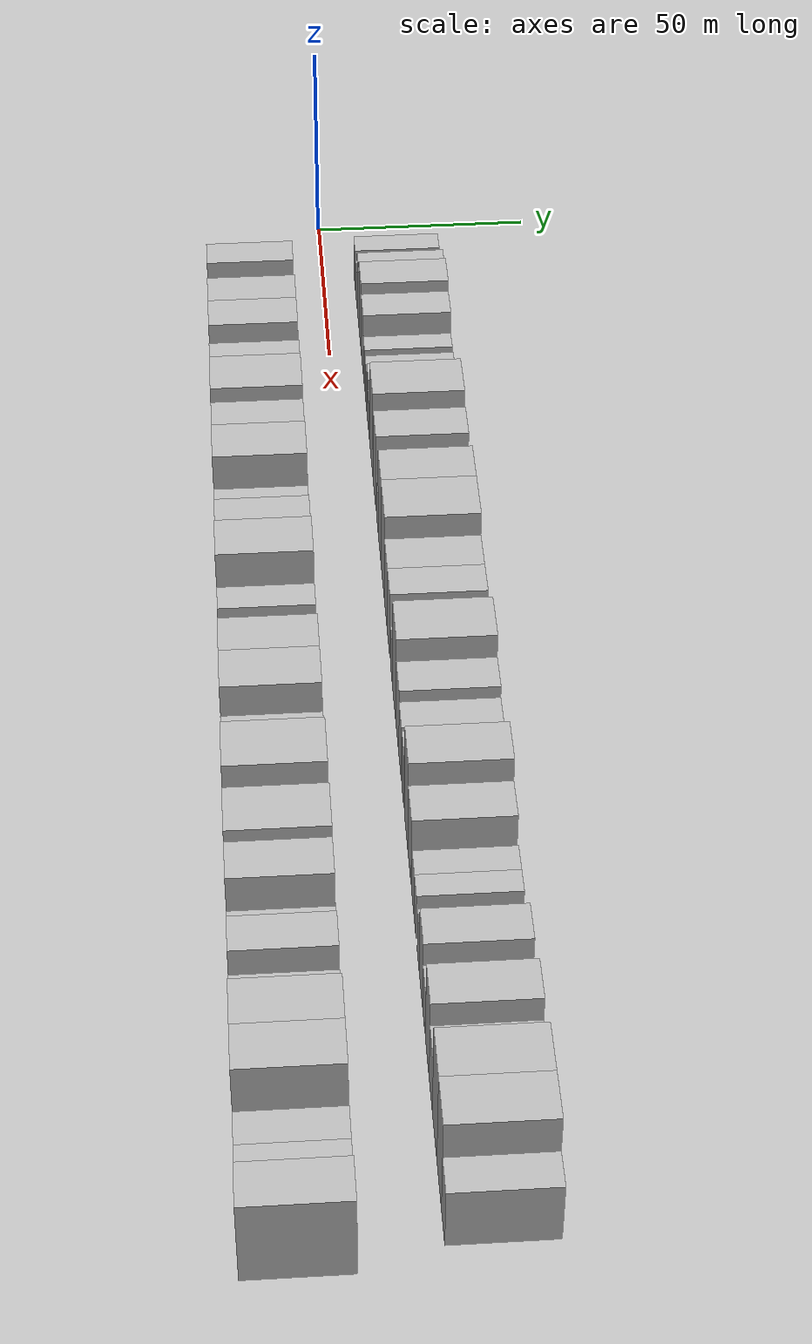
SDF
<sdf version="1.6">
 <world name="default">
  <scene>
   <sky><clouds><speed>12</speed></clouds></sky>
   <ambient>0.4 0.4 0.4 1</ambient>
   <background>0.7 0.7 0.7 1</background>
   <shadows>1</shadows>
  </scene>
  <gravity>0 0 -9.8066</gravity>
  <magnetic_field>6e-06 2.3e-05 -4.2e-05</magnetic_field>
  <physics default="0" name="default_physics" type="ode">
   <ode>
    <solver>
     <type>quick</type>
     <iters>10</iters>
     <sor>1.0</sor>
     <use_dynamic_moi_rescaling>0</use_dynamic_moi_rescaling>
    </solver>
    <constraints>
     <cfm>0</cfm>
     <erp>0.2</erp>
     <contact_max_correcting_vel>100</contact_max_correcting_vel>
     <contact_surface_layer>0.001</contact_surface_layer>
    </constraints>
   </ode>
   <max_step_size>0.004</max_step_size>
   <real_time_factor>1</real_time_factor>
   <real_time_update_rate>250</real_time_update_rate>
  </physics>
  <light name="sun" type="directional">
   <pose>0 0 10 0 0 0</pose>
   <diffuse>0.8 0.8 0.8 1</diffuse>
   <specular>0.2 0.2 0.2 1</specular>
   <attenuation>
    <range>1000</range>
    <constant>0.9</constant>
    <linear>0.01</linear>
    <quadratic>0.001</quadratic>
   </attenuation>
   <direction>-0.5 0.1 -0.9</direction>
  </light>
  <model name="building_1">
   <static>1</static>
   <pose>22.8825 17.5000 0 0.000000 0.000000 1.570796</pose>
   <link name="link">
    <pose>0 0 6.00 0 0 0</pose>
    <collision name="collision"><geometry><box><size>20.0000 5.7649 12.0000</size></box></geometry></collision>
    <visual name="visual">
     <cast_shadows>0</cast_shadows>
     <geometry><box><size>20.0000 5.7649 12.0000</size></box></geometry>
     <material>
      <script>
       <uri>model://HANNAS_wall/materials/scripts</uri>
       <uri>model://HANNAS_wall/materials/textures</uri>
       <name>vrc/HANNAS_wall</name>
      </script>
     </material>
    </visual>
   </link>
  </model>
  <model name="building_2">
   <static>1</static>
   <pose>31.7566 17.5000 0 0.000000 0.000000 1.570796</pose>
   <link name="link">
    <pose>0 0 6.00 0 0 0</pose>
    <collision name="collision"><geometry><box><size>20.0000 5.9834 12.0000</size></box></geometry></collision>
    <visual name="visual">
     <cast_shadows>0</cast_shadows>
     <geometry><box><size>20.0000 5.9834 12.0000</size></box></geometry>
     <material>
      <script>
       <uri>model://HANNAS_wall/materials/scripts</uri>
       <uri>model://HANNAS_wall/materials/textures</uri>
       <name>vrc/HANNAS_wall</name>
      </script>
     </material>
    </visual>
   </link>
  </model>
  <model name="building_3">
   <static>1</static>
   <pose>38.5076 17.5000 0 0.000000 0.000000 1.570796</pose>
   <link name="link">
    <pose>0 0 9.00 0 0 0</pose>
    <collision name="collision"><geometry><box><size>20.0000 7.5184 18.0000</size></box></geometry></collision>
    <visual name="visual">
     <cast_shadows>0</cast_shadows>
     <geometry><box><size>20.0000 7.5184 18.0000</size></box></geometry>
     <material>
      <script>
       <uri>model://HANNAS_wall/materials/scripts</uri>
       <uri>model://HANNAS_wall/materials/textures</uri>
       <name>vrc/HANNAS_wall</name>
      </script>
     </material>
    </visual>
   </link>
  </model>
  <model name="building_4">
   <static>1</static>
   <pose>46.5126 17.5000 0 0.000000 0.000000 1.570796</pose>
   <link name="link">
    <pose>0 0 10.50 0 0 0</pose>
    <collision name="collision"><geometry><box><size>20.0000 8.4917 21.0000</size></box></geometry></collision>
    <visual name="visual">
     <cast_shadows>0</cast_shadows>
     <geometry><box><size>20.0000 8.4917 21.0000</size></box></geometry>
     <material>
      <script>
       <uri>model://HANNAS_wall/materials/scripts</uri>
       <uri>model://HANNAS_wall/materials/textures</uri>
       <name>vrc/HANNAS_wall</name>
      </script>
     </material>
    </visual>
   </link>
  </model>
  <model name="building_5">
   <static>1</static>
   <pose>54.7586 17.5000 0 0.000000 0.000000 1.570796</pose>
   <link name="link">
    <pose>0 0 9.00 0 0 0</pose>
    <collision name="collision"><geometry><box><size>20.0000 8.0003 18.0000</size></box></geometry></collision>
    <visual name="visual">
     <cast_shadows>0</cast_shadows>
     <geometry><box><size>20.0000 8.0003 18.0000</size></box></geometry>
     <material>
      <script>
       <uri>model://HANNAS_wall/materials/scripts</uri>
       <uri>model://HANNAS_wall/materials/textures</uri>
       <name>vrc/HANNAS_wall</name>
      </script>
     </material>
    </visual>
   </link>
  </model>
  <model name="building_6">
   <static>1</static>
   <pose>61.2780 17.5000 0 0.000000 0.000000 1.570796</pose>
   <link name="link">
    <pose>0 0 6.00 0 0 0</pose>
    <collision name="collision"><geometry><box><size>20.0000 5.0384 12.0000</size></box></geometry></collision>
    <visual name="visual">
     <cast_shadows>0</cast_shadows>
     <geometry><box><size>20.0000 5.0384 12.0000</size></box></geometry>
     <material>
      <script>
       <uri>model://HANNAS_wall/materials/scripts</uri>
       <uri>model://HANNAS_wall/materials/textures</uri>
       <name>vrc/HANNAS_wall</name>
      </script>
     </material>
    </visual>
   </link>
  </model>
  <model name="building_7">
   <static>1</static>
   <pose>68.5894 17.5000 0 0.000000 0.000000 1.570796</pose>
   <link name="link">
    <pose>0 0 6.00 0 0 0</pose>
    <collision name="collision"><geometry><box><size>20.0000 5.5843 12.0000</size></box></geometry></collision>
    <visual name="visual">
     <cast_shadows>0</cast_shadows>
     <geometry><box><size>20.0000 5.5843 12.0000</size></box></geometry>
     <material>
      <script>
       <uri>model://HANNAS_wall/materials/scripts</uri>
       <uri>model://HANNAS_wall/materials/textures</uri>
       <name>vrc/HANNAS_wall</name>
      </script>
     </material>
    </visual>
   </link>
  </model>
  <model name="building_8">
   <static>1</static>
   <pose>75.3883 17.5000 0 0.000000 0.000000 1.570796</pose>
   <link name="link">
    <pose>0 0 7.50 0 0 0</pose>
    <collision name="collision"><geometry><box><size>20.0000 6.0135 15.0000</size></box></geometry></collision>
    <visual name="visual">
     <cast_shadows>0</cast_shadows>
     <geometry><box><size>20.0000 6.0135 15.0000</size></box></geometry>
     <material>
      <script>
       <uri>model://HANNAS_wall/materials/scripts</uri>
       <uri>model://HANNAS_wall/materials/textures</uri>
       <name>vrc/HANNAS_wall</name>
      </script>
     </material>
    </visual>
   </link>
  </model>
  <model name="building_9">
   <static>1</static>
   <pose>80.8570 17.5000 0 0.000000 0.000000 1.570796</pose>
   <link name="link">
    <pose>0 0 6.00 0 0 0</pose>
    <collision name="collision"><geometry><box><size>20.0000 4.9239 12.0000</size></box></geometry></collision>
    <visual name="visual">
     <cast_shadows>0</cast_shadows>
     <geometry><box><size>20.0000 4.9239 12.0000</size></box></geometry>
     <material>
      <script>
       <uri>model://HANNAS_wall/materials/scripts</uri>
       <uri>model://HANNAS_wall/materials/textures</uri>
       <name>vrc/HANNAS_wall</name>
      </script>
     </material>
    </visual>
   </link>
  </model>
  <model name="building_10">
   <static>1</static>
   <pose>88.8448 17.5000 0 0.000000 0.000000 1.570796</pose>
   <link name="link">
    <pose>0 0 12.00 0 0 0</pose>
    <collision name="collision"><geometry><box><size>20.0000 11.0518 24.0000</size></box></geometry></collision>
    <visual name="visual">
     <cast_shadows>0</cast_shadows>
     <geometry><box><size>20.0000 11.0518 24.0000</size></box></geometry>
     <material>
      <script>
       <uri>model://HANNAS_wall/materials/scripts</uri>
       <uri>model://HANNAS_wall/materials/textures</uri>
       <name>vrc/HANNAS_wall</name>
      </script>
     </material>
    </visual>
   </link>
  </model>
  <model name="building_11">
   <static>1</static>
   <pose>100.7641 17.5000 0 0.000000 0.000000 1.570796</pose>
   <link name="link">
    <pose>0 0 10.50 0 0 0</pose>
    <collision name="collision"><geometry><box><size>20.0000 8.7867 21.0000</size></box></geometry></collision>
    <visual name="visual">
     <cast_shadows>0</cast_shadows>
     <geometry><box><size>20.0000 8.7867 21.0000</size></box></geometry>
     <material>
      <script>
       <uri>model://HANNAS_wall/materials/scripts</uri>
       <uri>model://HANNAS_wall/materials/textures</uri>
       <name>vrc/HANNAS_wall</name>
      </script>
     </material>
    </visual>
   </link>
  </model>
  <model name="building_12">
   <static>1</static>
   <pose>110.0687 17.5000 0 0.000000 0.000000 1.570796</pose>
   <link name="link">
    <pose>0 0 6.00 0 0 0</pose>
    <collision name="collision"><geometry><box><size>20.0000 5.8225 12.0000</size></box></geometry></collision>
    <visual name="visual">
     <cast_shadows>0</cast_shadows>
     <geometry><box><size>20.0000 5.8225 12.0000</size></box></geometry>
     <material>
      <script>
       <uri>model://HANNAS_wall/materials/scripts</uri>
       <uri>model://HANNAS_wall/materials/textures</uri>
       <name>vrc/HANNAS_wall</name>
      </script>
     </material>
    </visual>
   </link>
  </model>
  <model name="building_13">
   <static>1</static>
   <pose>117.8152 17.5000 0 0.000000 0.000000 1.570796</pose>
   <link name="link">
    <pose>0 0 12.00 0 0 0</pose>
    <collision name="collision"><geometry><box><size>20.0000 9.6705 24.0000</size></box></geometry></collision>
    <visual name="visual">
     <cast_shadows>0</cast_shadows>
     <geometry><box><size>20.0000 9.6705 24.0000</size></box></geometry>
     <material>
      <script>
       <uri>model://HANNAS_wall/materials/scripts</uri>
       <uri>model://HANNAS_wall/materials/textures</uri>
       <name>vrc/HANNAS_wall</name>
      </script>
     </material>
    </visual>
   </link>
  </model>
  <model name="building_14">
   <static>1</static>
   <pose>128.5893 17.5000 0 0.000000 0.000000 1.570796</pose>
   <link name="link">
    <pose>0 0 12.00 0 0 0</pose>
    <collision name="collision"><geometry><box><size>20.0000 11.8775 24.0000</size></box></geometry></collision>
    <visual name="visual">
     <cast_shadows>0</cast_shadows>
     <geometry><box><size>20.0000 11.8775 24.0000</size></box></geometry>
     <material>
      <script>
       <uri>model://HANNAS_wall/materials/scripts</uri>
       <uri>model://HANNAS_wall/materials/textures</uri>
       <name>vrc/HANNAS_wall</name>
      </script>
     </material>
    </visual>
   </link>
  </model>
  <model name="building_15">
   <static>1</static>
   <pose>139.0228 17.5000 0 0.000000 0.000000 1.570796</pose>
   <link name="link">
    <pose>0 0 9.00 0 0 0</pose>
    <collision name="collision"><geometry><box><size>20.0000 8.9897 18.0000</size></box></geometry></collision>
    <visual name="visual">
     <cast_shadows>0</cast_shadows>
     <geometry><box><size>20.0000 8.9897 18.0000</size></box></geometry>
     <material>
      <script>
       <uri>model://HANNAS_wall/materials/scripts</uri>
       <uri>model://HANNAS_wall/materials/textures</uri>
       <name>vrc/HANNAS_wall</name>
      </script>
     </material>
    </visual>
   </link>
  </model>
  <model name="building_16">
   <static>1</static>
   <pose>147.4466 17.5000 0 0.000000 0.000000 1.570796</pose>
   <link name="link">
    <pose>0 0 9.00 0 0 0</pose>
    <collision name="collision"><geometry><box><size>20.0000 7.8578 18.0000</size></box></geometry></collision>
    <visual name="visual">
     <cast_shadows>0</cast_shadows>
     <geometry><box><size>20.0000 7.8578 18.0000</size></box></geometry>
     <material>
      <script>
       <uri>model://HANNAS_wall/materials/scripts</uri>
       <uri>model://HANNAS_wall/materials/textures</uri>
       <name>vrc/HANNAS_wall</name>
      </script>
     </material>
    </visual>
   </link>
  </model>
  <model name="building_17">
   <static>1</static>
   <pose>156.9843 17.5000 0 0.000000 0.000000 1.570796</pose>
   <link name="link">
    <pose>0 0 6.00 0 0 0</pose>
    <collision name="collision"><geometry><box><size>20.0000 5.2177 12.0000</size></box></geometry></collision>
    <visual name="visual">
     <cast_shadows>0</cast_shadows>
     <geometry><box><size>20.0000 5.2177 12.0000</size></box></geometry>
     <material>
      <script>
       <uri>model://HANNAS_wall/materials/scripts</uri>
       <uri>model://HANNAS_wall/materials/textures</uri>
       <name>vrc/HANNAS_wall</name>
      </script>
     </material>
    </visual>
   </link>
  </model>
  <model name="building_18">
   <static>1</static>
   <pose>165.1413 17.5000 0 0.000000 0.000000 1.570796</pose>
   <link name="link">
    <pose>0 0 12.00 0 0 0</pose>
    <collision name="collision"><geometry><box><size>20.0000 11.0962 24.0000</size></box></geometry></collision>
    <visual name="visual">
     <cast_shadows>0</cast_shadows>
     <geometry><box><size>20.0000 11.0962 24.0000</size></box></geometry>
     <material>
      <script>
       <uri>model://HANNAS_wall/materials/scripts</uri>
       <uri>model://HANNAS_wall/materials/textures</uri>
       <name>vrc/HANNAS_wall</name>
      </script>
     </material>
    </visual>
   </link>
  </model>
  <model name="building_19">
   <static>1</static>
   <pose>174.8093 17.5000 0 0.000000 0.000000 1.570796</pose>
   <link name="link">
    <pose>0 0 9.00 0 0 0</pose>
    <collision name="collision"><geometry><box><size>20.0000 8.2399 18.0000</size></box></geometry></collision>
    <visual name="visual">
     <cast_shadows>0</cast_shadows>
     <geometry><box><size>20.0000 8.2399 18.0000</size></box></geometry>
     <material>
      <script>
       <uri>model://HANNAS_wall/materials/scripts</uri>
       <uri>model://HANNAS_wall/materials/textures</uri>
       <name>vrc/HANNAS_wall</name>
      </script>
     </material>
    </visual>
   </link>
  </model>
  <model name="building_20">
   <static>1</static>
   <pose>182.4433 17.5000 0 0.000000 0.000000 1.570796</pose>
   <link name="link">
    <pose>0 0 7.50 0 0 0</pose>
    <collision name="collision"><geometry><box><size>20.0000 7.0280 15.0000</size></box></geometry></collision>
    <visual name="visual">
     <cast_shadows>0</cast_shadows>
     <geometry><box><size>20.0000 7.0280 15.0000</size></box></geometry>
     <material>
      <script>
       <uri>model://HANNAS_wall/materials/scripts</uri>
       <uri>model://HANNAS_wall/materials/textures</uri>
       <name>vrc/HANNAS_wall</name>
      </script>
     </material>
    </visual>
   </link>
  </model>
  <model name="building_21">
   <static>1</static>
   <pose>190.1219 17.5000 0 0.000000 0.000000 1.570796</pose>
   <link name="link">
    <pose>0 0 7.50 0 0 0</pose>
    <collision name="collision"><geometry><box><size>20.0000 6.3291 15.0000</size></box></geometry></collision>
    <visual name="visual">
     <cast_shadows>0</cast_shadows>
     <geometry><box><size>20.0000 6.3291 15.0000</size></box></geometry>
     <material>
      <script>
       <uri>model://HANNAS_wall/materials/scripts</uri>
       <uri>model://HANNAS_wall/materials/textures</uri>
       <name>vrc/HANNAS_wall</name>
      </script>
     </material>
    </visual>
   </link>
  </model>
  <model name="building_22">
   <static>1</static>
   <pose>199.1633 17.5000 0 0.000000 0.000000 1.570796</pose>
   <link name="link">
    <pose>0 0 12.00 0 0 0</pose>
    <collision name="collision"><geometry><box><size>20.0000 9.7538 24.0000</size></box></geometry></collision>
    <visual name="visual">
     <cast_shadows>0</cast_shadows>
     <geometry><box><size>20.0000 9.7538 24.0000</size></box></geometry>
     <material>
      <script>
       <uri>model://HANNAS_wall/materials/scripts</uri>
       <uri>model://HANNAS_wall/materials/textures</uri>
       <name>vrc/HANNAS_wall</name>
      </script>
     </material>
    </visual>
   </link>
  </model>
  <model name="building_23">
   <static>1</static>
   <pose>208.5142 17.5000 0 0.000000 0.000000 1.570796</pose>
   <link name="link">
    <pose>0 0 9.00 0 0 0</pose>
    <collision name="collision"><geometry><box><size>20.0000 8.9480 18.0000</size></box></geometry></collision>
    <visual name="visual">
     <cast_shadows>0</cast_shadows>
     <geometry><box><size>20.0000 8.9480 18.0000</size></box></geometry>
     <material>
      <script>
       <uri>model://HANNAS_wall/materials/scripts</uri>
       <uri>model://HANNAS_wall/materials/textures</uri>
       <name>vrc/HANNAS_wall</name>
      </script>
     </material>
    </visual>
   </link>
  </model>
  <model name="building_24">
   <static>1</static>
   <pose>217.9626 17.5000 0 0.000000 0.000000 1.570796</pose>
   <link name="link">
    <pose>0 0 6.00 0 0 0</pose>
    <collision name="collision"><geometry><box><size>20.0000 5.9486 12.0000</size></box></geometry></collision>
    <visual name="visual">
     <cast_shadows>0</cast_shadows>
     <geometry><box><size>20.0000 5.9486 12.0000</size></box></geometry>
     <material>
      <script>
       <uri>model://HANNAS_wall/materials/scripts</uri>
       <uri>model://HANNAS_wall/materials/textures</uri>
       <name>vrc/HANNAS_wall</name>
      </script>
     </material>
    </visual>
   </link>
  </model>
  <model name="building_25">
   <static>1</static>
   <pose>223.5839 17.5000 0 0.000000 0.000000 1.570796</pose>
   <link name="link">
    <pose>0 0 6.00 0 0 0</pose>
    <collision name="collision"><geometry><box><size>20.0000 5.2940 12.0000</size></box></geometry></collision>
    <visual name="visual">
     <cast_shadows>0</cast_shadows>
     <geometry><box><size>20.0000 5.2940 12.0000</size></box></geometry>
     <material>
      <script>
       <uri>model://HANNAS_wall/materials/scripts</uri>
       <uri>model://HANNAS_wall/materials/textures</uri>
       <name>vrc/HANNAS_wall</name>
      </script>
     </material>
    </visual>
   </link>
  </model>
  <model name="building_26">
   <static>1</static>
   <pose>231.7309 17.5000 0 0.000000 0.000000 1.570796</pose>
   <link name="link">
    <pose>0 0 6.00 0 0 0</pose>
    <collision name="collision"><geometry><box><size>20.0000 5.0000 12.0000</size></box></geometry></collision>
    <visual name="visual">
     <cast_shadows>0</cast_shadows>
     <geometry><box><size>20.0000 5.0000 12.0000</size></box></geometry>
     <material>
      <script>
       <uri>model://HANNAS_wall/materials/scripts</uri>
       <uri>model://HANNAS_wall/materials/textures</uri>
       <name>vrc/HANNAS_wall</name>
      </script>
     </material>
    </visual>
   </link>
  </model>
  <model name="building_27">
   <static>1</static>
   <pose>238.4052 17.5000 0 0.000000 0.000000 1.570796</pose>
   <link name="link">
    <pose>0 0 9.00 0 0 0</pose>
    <collision name="collision"><geometry><box><size>20.0000 8.3485 18.0000</size></box></geometry></collision>
    <visual name="visual">
     <cast_shadows>0</cast_shadows>
     <geometry><box><size>20.0000 8.3485 18.0000</size></box></geometry>
     <material>
      <script>
       <uri>model://HANNAS_wall/materials/scripts</uri>
       <uri>model://HANNAS_wall/materials/textures</uri>
       <name>vrc/HANNAS_wall</name>
      </script>
     </material>
    </visual>
   </link>
  </model>
  <model name="building_28">
   <static>1</static>
   <pose>245.5368 17.5000 0 0.000000 0.000000 1.570796</pose>
   <link name="link">
    <pose>0 0 6.00 0 0 0</pose>
    <collision name="collision"><geometry><box><size>20.0000 5.9148 12.0000</size></box></geometry></collision>
    <visual name="visual">
     <cast_shadows>0</cast_shadows>
     <geometry><box><size>20.0000 5.9148 12.0000</size></box></geometry>
     <material>
      <script>
       <uri>model://HANNAS_wall/materials/scripts</uri>
       <uri>model://HANNAS_wall/materials/textures</uri>
       <name>vrc/HANNAS_wall</name>
      </script>
     </material>
    </visual>
   </link>
  </model>
  <model name="building_29">
   <static>1</static>
   <pose>253.9768 17.5000 0 0.000000 0.000000 1.570796</pose>
   <link name="link">
    <pose>0 0 10.50 0 0 0</pose>
    <collision name="collision"><geometry><box><size>20.0000 8.9652 21.0000</size></box></geometry></collision>
    <visual name="visual">
     <cast_shadows>0</cast_shadows>
     <geometry><box><size>20.0000 8.9652 21.0000</size></box></geometry>
     <material>
      <script>
       <uri>model://HANNAS_wall/materials/scripts</uri>
       <uri>model://HANNAS_wall/materials/textures</uri>
       <name>vrc/HANNAS_wall</name>
      </script>
     </material>
    </visual>
   </link>
  </model>
  <model name="building_30">
   <static>1</static>
   <pose>262.1839 17.5000 0 0.000000 0.000000 1.570796</pose>
   <link name="link">
    <pose>0 0 7.50 0 0 0</pose>
    <collision name="collision"><geometry><box><size>20.0000 7.4489 15.0000</size></box></geometry></collision>
    <visual name="visual">
     <cast_shadows>0</cast_shadows>
     <geometry><box><size>20.0000 7.4489 15.0000</size></box></geometry>
     <material>
      <script>
       <uri>model://HANNAS_wall/materials/scripts</uri>
       <uri>model://HANNAS_wall/materials/textures</uri>
       <name>vrc/HANNAS_wall</name>
      </script>
     </material>
    </visual>
   </link>
  </model>
  <model name="building_31">
   <static>1</static>
   <pose>271.0399 17.5000 0 0.000000 0.000000 1.570796</pose>
   <link name="link">
    <pose>0 0 12.00 0 0 0</pose>
    <collision name="collision"><geometry><box><size>20.0000 10.2631 24.0000</size></box></geometry></collision>
    <visual name="visual">
     <cast_shadows>0</cast_shadows>
     <geometry><box><size>20.0000 10.2631 24.0000</size></box></geometry>
     <material>
      <script>
       <uri>model://HANNAS_wall/materials/scripts</uri>
       <uri>model://HANNAS_wall/materials/textures</uri>
       <name>vrc/HANNAS_wall</name>
      </script>
     </material>
    </visual>
   </link>
  </model>
  <model name="building_32">
   <static>1</static>
   <pose>281.1523 17.5000 0 0.000000 0.000000 1.570796</pose>
   <link name="link">
    <pose>0 0 12.00 0 0 0</pose>
    <collision name="collision"><geometry><box><size>20.0000 9.9617 24.0000</size></box></geometry></collision>
    <visual name="visual">
     <cast_shadows>0</cast_shadows>
     <geometry><box><size>20.0000 9.9617 24.0000</size></box></geometry>
     <material>
      <script>
       <uri>model://HANNAS_wall/materials/scripts</uri>
       <uri>model://HANNAS_wall/materials/textures</uri>
       <name>vrc/HANNAS_wall</name>
      </script>
     </material>
    </visual>
   </link>
  </model>
  <model name="building_33">
   <static>1</static>
   <pose>289.7270 17.5000 0 0.000000 0.000000 1.570796</pose>
   <link name="link">
    <pose>0 0 7.50 0 0 0</pose>
    <collision name="collision"><geometry><box><size>20.0000 7.1876 15.0000</size></box></geometry></collision>
    <visual name="visual">
     <cast_shadows>0</cast_shadows>
     <geometry><box><size>20.0000 7.1876 15.0000</size></box></geometry>
     <material>
      <script>
       <uri>model://HANNAS_wall/materials/scripts</uri>
       <uri>model://HANNAS_wall/materials/textures</uri>
       <name>vrc/HANNAS_wall</name>
      </script>
     </material>
    </visual>
   </link>
  </model>
  <model name="building_34">
   <static>1</static>
   <pose>24.4968 -17.5000 0 0.000000 0.000000 1.570796</pose>
   <link name="link">
    <pose>0 0 6.00 0 0 0</pose>
    <collision name="collision"><geometry><box><size>20.0000 4.9936 12.0000</size></box></geometry></collision>
    <visual name="visual">
     <cast_shadows>0</cast_shadows>
     <geometry><box><size>20.0000 4.9936 12.0000</size></box></geometry>
     <material>
      <script>
       <uri>model://HANNAS_wall/materials/scripts</uri>
       <uri>model://HANNAS_wall/materials/textures</uri>
       <name>vrc/HANNAS_wall</name>
      </script>
     </material>
    </visual>
   </link>
  </model>
  <model name="building_35">
   <static>1</static>
   <pose>32.7701 -17.5000 0 0.000000 0.000000 1.570796</pose>
   <link name="link">
    <pose>0 0 9.00 0 0 0</pose>
    <collision name="collision"><geometry><box><size>20.0000 7.5528 18.0000</size></box></geometry></collision>
    <visual name="visual">
     <cast_shadows>0</cast_shadows>
     <geometry><box><size>20.0000 7.5528 18.0000</size></box></geometry>
     <material>
      <script>
       <uri>model://HANNAS_wall/materials/scripts</uri>
       <uri>model://HANNAS_wall/materials/textures</uri>
       <name>vrc/HANNAS_wall</name>
      </script>
     </material>
    </visual>
   </link>
  </model>
  <model name="building_36">
   <static>1</static>
   <pose>40.4306 -17.5000 0 0.000000 0.000000 1.570796</pose>
   <link name="link">
    <pose>0 0 6.00 0 0 0</pose>
    <collision name="collision"><geometry><box><size>20.0000 5.7682 12.0000</size></box></geometry></collision>
    <visual name="visual">
     <cast_shadows>0</cast_shadows>
     <geometry><box><size>20.0000 5.7682 12.0000</size></box></geometry>
     <material>
      <script>
       <uri>model://HANNAS_wall/materials/scripts</uri>
       <uri>model://HANNAS_wall/materials/textures</uri>
       <name>vrc/HANNAS_wall</name>
      </script>
     </material>
    </visual>
   </link>
  </model>
  <model name="building_37">
   <static>1</static>
   <pose>50.5580 -17.5000 0 0.000000 0.000000 1.570796</pose>
   <link name="link">
    <pose>0 0 10.50 0 0 0</pose>
    <collision name="collision"><geometry><box><size>20.0000 8.4867 21.0000</size></box></geometry></collision>
    <visual name="visual">
     <cast_shadows>0</cast_shadows>
     <geometry><box><size>20.0000 8.4867 21.0000</size></box></geometry>
     <material>
      <script>
       <uri>model://HANNAS_wall/materials/scripts</uri>
       <uri>model://HANNAS_wall/materials/textures</uri>
       <name>vrc/HANNAS_wall</name>
      </script>
     </material>
    </visual>
   </link>
  </model>
  <model name="building_38">
   <static>1</static>
   <pose>59.3773 -17.5000 0 0.000000 0.000000 1.570796</pose>
   <link name="link">
    <pose>0 0 10.50 0 0 0</pose>
    <collision name="collision"><geometry><box><size>20.0000 9.1519 21.0000</size></box></geometry></collision>
    <visual name="visual">
     <cast_shadows>0</cast_shadows>
     <geometry><box><size>20.0000 9.1519 21.0000</size></box></geometry>
     <material>
      <script>
       <uri>model://HANNAS_wall/materials/scripts</uri>
       <uri>model://HANNAS_wall/materials/textures</uri>
       <name>vrc/HANNAS_wall</name>
      </script>
     </material>
    </visual>
   </link>
  </model>
  <model name="building_39">
   <static>1</static>
   <pose>67.7289 -17.5000 0 0.000000 0.000000 1.570796</pose>
   <link name="link">
    <pose>0 0 6.00 0 0 0</pose>
    <collision name="collision"><geometry><box><size>20.0000 5.5512 12.0000</size></box></geometry></collision>
    <visual name="visual">
     <cast_shadows>0</cast_shadows>
     <geometry><box><size>20.0000 5.5512 12.0000</size></box></geometry>
     <material>
      <script>
       <uri>model://HANNAS_wall/materials/scripts</uri>
       <uri>model://HANNAS_wall/materials/textures</uri>
       <name>vrc/HANNAS_wall</name>
      </script>
     </material>
    </visual>
   </link>
  </model>
  <model name="building_40">
   <static>1</static>
   <pose>74.7771 -17.5000 0 0.000000 0.000000 1.570796</pose>
   <link name="link">
    <pose>0 0 10.50 0 0 0</pose>
    <collision name="collision"><geometry><box><size>20.0000 8.5453 21.0000</size></box></geometry></collision>
    <visual name="visual">
     <cast_shadows>0</cast_shadows>
     <geometry><box><size>20.0000 8.5453 21.0000</size></box></geometry>
     <material>
      <script>
       <uri>model://HANNAS_wall/materials/scripts</uri>
       <uri>model://HANNAS_wall/materials/textures</uri>
       <name>vrc/HANNAS_wall</name>
      </script>
     </material>
    </visual>
   </link>
  </model>
  <model name="building_41">
   <static>1</static>
   <pose>84.6604 -17.5000 0 0.000000 0.000000 1.570796</pose>
   <link name="link">
    <pose>0 0 12.00 0 0 0</pose>
    <collision name="collision"><geometry><box><size>20.0000 11.2213 24.0000</size></box></geometry></collision>
    <visual name="visual">
     <cast_shadows>0</cast_shadows>
     <geometry><box><size>20.0000 11.2213 24.0000</size></box></geometry>
     <material>
      <script>
       <uri>model://HANNAS_wall/materials/scripts</uri>
       <uri>model://HANNAS_wall/materials/textures</uri>
       <name>vrc/HANNAS_wall</name>
      </script>
     </material>
    </visual>
   </link>
  </model>
  <model name="building_42">
   <static>1</static>
   <pose>96.3572 -17.5000 0 0.000000 0.000000 1.570796</pose>
   <link name="link">
    <pose>0 0 10.50 0 0 0</pose>
    <collision name="collision"><geometry><box><size>20.0000 10.1722 21.0000</size></box></geometry></collision>
    <visual name="visual">
     <cast_shadows>0</cast_shadows>
     <geometry><box><size>20.0000 10.1722 21.0000</size></box></geometry>
     <material>
      <script>
       <uri>model://HANNAS_wall/materials/scripts</uri>
       <uri>model://HANNAS_wall/materials/textures</uri>
       <name>vrc/HANNAS_wall</name>
      </script>
     </material>
    </visual>
   </link>
  </model>
  <model name="building_43">
   <static>1</static>
   <pose>107.7852 -17.5000 0 0.000000 0.000000 1.570796</pose>
   <link name="link">
    <pose>0 0 12.00 0 0 0</pose>
    <collision name="collision"><geometry><box><size>20.0000 10.6839 24.0000</size></box></geometry></collision>
    <visual name="visual">
     <cast_shadows>0</cast_shadows>
     <geometry><box><size>20.0000 10.6839 24.0000</size></box></geometry>
     <material>
      <script>
       <uri>model://HANNAS_wall/materials/scripts</uri>
       <uri>model://HANNAS_wall/materials/textures</uri>
       <name>vrc/HANNAS_wall</name>
      </script>
     </material>
    </visual>
   </link>
  </model>
  <model name="building_44">
   <static>1</static>
   <pose>116.4331 -17.5000 0 0.000000 0.000000 1.570796</pose>
   <link name="link">
    <pose>0 0 7.50 0 0 0</pose>
    <collision name="collision"><geometry><box><size>20.0000 6.6119 15.0000</size></box></geometry></collision>
    <visual name="visual">
     <cast_shadows>0</cast_shadows>
     <geometry><box><size>20.0000 6.6119 15.0000</size></box></geometry>
     <material>
      <script>
       <uri>model://HANNAS_wall/materials/scripts</uri>
       <uri>model://HANNAS_wall/materials/textures</uri>
       <name>vrc/HANNAS_wall</name>
      </script>
     </material>
    </visual>
   </link>
  </model>
  <model name="building_45">
   <static>1</static>
   <pose>123.6493 -17.5000 0 0.000000 0.000000 1.570796</pose>
   <link name="link">
    <pose>0 0 9.00 0 0 0</pose>
    <collision name="collision"><geometry><box><size>20.0000 7.8205 18.0000</size></box></geometry></collision>
    <visual name="visual">
     <cast_shadows>0</cast_shadows>
     <geometry><box><size>20.0000 7.8205 18.0000</size></box></geometry>
     <material>
      <script>
       <uri>model://HANNAS_wall/materials/scripts</uri>
       <uri>model://HANNAS_wall/materials/textures</uri>
       <name>vrc/HANNAS_wall</name>
      </script>
     </material>
    </visual>
   </link>
  </model>
  <model name="building_46">
   <static>1</static>
   <pose>130.3463 -17.5000 0 0.000000 0.000000 1.570796</pose>
   <link name="link">
    <pose>0 0 6.00 0 0 0</pose>
    <collision name="collision"><geometry><box><size>20.0000 5.5735 12.0000</size></box></geometry></collision>
    <visual name="visual">
     <cast_shadows>0</cast_shadows>
     <geometry><box><size>20.0000 5.5735 12.0000</size></box></geometry>
     <material>
      <script>
       <uri>model://HANNAS_wall/materials/scripts</uri>
       <uri>model://HANNAS_wall/materials/textures</uri>
       <name>vrc/HANNAS_wall</name>
      </script>
     </material>
    </visual>
   </link>
  </model>
  <model name="building_47">
   <static>1</static>
   <pose>138.4124 -17.5000 0 0.000000 0.000000 1.570796</pose>
   <link name="link">
    <pose>0 0 12.00 0 0 0</pose>
    <collision name="collision"><geometry><box><size>20.0000 10.5587 24.0000</size></box></geometry></collision>
    <visual name="visual">
     <cast_shadows>0</cast_shadows>
     <geometry><box><size>20.0000 10.5587 24.0000</size></box></geometry>
     <material>
      <script>
       <uri>model://HANNAS_wall/materials/scripts</uri>
       <uri>model://HANNAS_wall/materials/textures</uri>
       <name>vrc/HANNAS_wall</name>
      </script>
     </material>
    </visual>
   </link>
  </model>
  <model name="building_48">
   <static>1</static>
   <pose>146.8838 -17.5000 0 0.000000 0.000000 1.570796</pose>
   <link name="link">
    <pose>0 0 7.50 0 0 0</pose>
    <collision name="collision"><geometry><box><size>20.0000 6.3841 15.0000</size></box></geometry></collision>
    <visual name="visual">
     <cast_shadows>0</cast_shadows>
     <geometry><box><size>20.0000 6.3841 15.0000</size></box></geometry>
     <material>
      <script>
       <uri>model://HANNAS_wall/materials/scripts</uri>
       <uri>model://HANNAS_wall/materials/textures</uri>
       <name>vrc/HANNAS_wall</name>
      </script>
     </material>
    </visual>
   </link>
  </model>
  <model name="building_49">
   <static>1</static>
   <pose>153.0710 -17.5000 0 0.000000 0.000000 1.570796</pose>
   <link name="link">
    <pose>0 0 6.00 0 0 0</pose>
    <collision name="collision"><geometry><box><size>20.0000 5.9902 12.0000</size></box></geometry></collision>
    <visual name="visual">
     <cast_shadows>0</cast_shadows>
     <geometry><box><size>20.0000 5.9902 12.0000</size></box></geometry>
     <material>
      <script>
       <uri>model://HANNAS_wall/materials/scripts</uri>
       <uri>model://HANNAS_wall/materials/textures</uri>
       <name>vrc/HANNAS_wall</name>
      </script>
     </material>
    </visual>
   </link>
  </model>
  <model name="building_50">
   <static>1</static>
   <pose>163.6697 -17.5000 0 0.000000 0.000000 1.570796</pose>
   <link name="link">
    <pose>0 0 10.50 0 0 0</pose>
    <collision name="collision"><geometry><box><size>20.0000 9.2074 21.0000</size></box></geometry></collision>
    <visual name="visual">
     <cast_shadows>0</cast_shadows>
     <geometry><box><size>20.0000 9.2074 21.0000</size></box></geometry>
     <material>
      <script>
       <uri>model://HANNAS_wall/materials/scripts</uri>
       <uri>model://HANNAS_wall/materials/textures</uri>
       <name>vrc/HANNAS_wall</name>
      </script>
     </material>
    </visual>
   </link>
  </model>
  <model name="building_51">
   <static>1</static>
   <pose>173.3958 -17.5000 0 0.000000 0.000000 1.570796</pose>
   <link name="link">
    <pose>0 0 10.50 0 0 0</pose>
    <collision name="collision"><geometry><box><size>20.0000 10.2447 21.0000</size></box></geometry></collision>
    <visual name="visual">
     <cast_shadows>0</cast_shadows>
     <geometry><box><size>20.0000 10.2447 21.0000</size></box></geometry>
     <material>
      <script>
       <uri>model://HANNAS_wall/materials/scripts</uri>
       <uri>model://HANNAS_wall/materials/textures</uri>
       <name>vrc/HANNAS_wall</name>
      </script>
     </material>
    </visual>
   </link>
  </model>
  <model name="building_52">
   <static>1</static>
   <pose>184.1411 -17.5000 0 0.000000 0.000000 1.570796</pose>
   <link name="link">
    <pose>0 0 7.50 0 0 0</pose>
    <collision name="collision"><geometry><box><size>20.0000 7.2460 15.0000</size></box></geometry></collision>
    <visual name="visual">
     <cast_shadows>0</cast_shadows>
     <geometry><box><size>20.0000 7.2460 15.0000</size></box></geometry>
     <material>
      <script>
       <uri>model://HANNAS_wall/materials/scripts</uri>
       <uri>model://HANNAS_wall/materials/textures</uri>
       <name>vrc/HANNAS_wall</name>
      </script>
     </material>
    </visual>
   </link>
  </model>
  <model name="building_53">
   <static>1</static>
   <pose>196.5894 -17.5000 0 0.000000 0.000000 1.570796</pose>
   <link name="link">
    <pose>0 0 12.00 0 0 0</pose>
    <collision name="collision"><geometry><box><size>20.0000 11.6504 24.0000</size></box></geometry></collision>
    <visual name="visual">
     <cast_shadows>0</cast_shadows>
     <geometry><box><size>20.0000 11.6504 24.0000</size></box></geometry>
     <material>
      <script>
       <uri>model://HANNAS_wall/materials/scripts</uri>
       <uri>model://HANNAS_wall/materials/textures</uri>
       <name>vrc/HANNAS_wall</name>
      </script>
     </material>
    </visual>
   </link>
  </model>
  <model name="building_54">
   <static>1</static>
   <pose>205.1087 -17.5000 0 0.000000 0.000000 1.570796</pose>
   <link name="link">
    <pose>0 0 6.00 0 0 0</pose>
    <collision name="collision"><geometry><box><size>20.0000 5.3881 12.0000</size></box></geometry></collision>
    <visual name="visual">
     <cast_shadows>0</cast_shadows>
     <geometry><box><size>20.0000 5.3881 12.0000</size></box></geometry>
     <material>
      <script>
       <uri>model://HANNAS_wall/materials/scripts</uri>
       <uri>model://HANNAS_wall/materials/textures</uri>
       <name>vrc/HANNAS_wall</name>
      </script>
     </material>
    </visual>
   </link>
  </model>
  <model name="building_55">
   <static>1</static>
   <pose>213.2072 -17.5000 0 0.000000 0.000000 1.570796</pose>
   <link name="link">
    <pose>0 0 12.00 0 0 0</pose>
    <collision name="collision"><geometry><box><size>20.0000 10.8089 24.0000</size></box></geometry></collision>
    <visual name="visual">
     <cast_shadows>0</cast_shadows>
     <geometry><box><size>20.0000 10.8089 24.0000</size></box></geometry>
     <material>
      <script>
       <uri>model://HANNAS_wall/materials/scripts</uri>
       <uri>model://HANNAS_wall/materials/textures</uri>
       <name>vrc/HANNAS_wall</name>
      </script>
     </material>
    </visual>
   </link>
  </model>
  <model name="building_56">
   <static>1</static>
   <pose>223.0552 -17.5000 0 0.000000 0.000000 1.570796</pose>
   <link name="link">
    <pose>0 0 10.50 0 0 0</pose>
    <collision name="collision"><geometry><box><size>20.0000 8.8871 21.0000</size></box></geometry></collision>
    <visual name="visual">
     <cast_shadows>0</cast_shadows>
     <geometry><box><size>20.0000 8.8871 21.0000</size></box></geometry>
     <material>
      <script>
       <uri>model://HANNAS_wall/materials/scripts</uri>
       <uri>model://HANNAS_wall/materials/textures</uri>
       <name>vrc/HANNAS_wall</name>
      </script>
     </material>
    </visual>
   </link>
  </model>
  <model name="building_57">
   <static>1</static>
   <pose>230.1291 -17.5000 0 0.000000 0.000000 1.570796</pose>
   <link name="link">
    <pose>0 0 6.00 0 0 0</pose>
    <collision name="collision"><geometry><box><size>20.0000 5.2607 12.0000</size></box></geometry></collision>
    <visual name="visual">
     <cast_shadows>0</cast_shadows>
     <geometry><box><size>20.0000 5.2607 12.0000</size></box></geometry>
     <material>
      <script>
       <uri>model://HANNAS_wall/materials/scripts</uri>
       <uri>model://HANNAS_wall/materials/textures</uri>
       <name>vrc/HANNAS_wall</name>
      </script>
     </material>
    </visual>
   </link>
  </model>
  <model name="building_58">
   <static>1</static>
   <pose>237.8130 -17.5000 0 0.000000 0.000000 1.570796</pose>
   <link name="link">
    <pose>0 0 9.00 0 0 0</pose>
    <collision name="collision"><geometry><box><size>20.0000 8.1071 18.0000</size></box></geometry></collision>
    <visual name="visual">
     <cast_shadows>0</cast_shadows>
     <geometry><box><size>20.0000 8.1071 18.0000</size></box></geometry>
     <material>
      <script>
       <uri>model://HANNAS_wall/materials/scripts</uri>
       <uri>model://HANNAS_wall/materials/textures</uri>
       <name>vrc/HANNAS_wall</name>
      </script>
     </material>
    </visual>
   </link>
  </model>
  <model name="building_59">
   <static>1</static>
   <pose>247.9261 -17.5000 0 0.000000 0.000000 1.570796</pose>
   <link name="link">
    <pose>0 0 7.50 0 0 0</pose>
    <collision name="collision"><geometry><box><size>20.0000 6.1191 15.0000</size></box></geometry></collision>
    <visual name="visual">
     <cast_shadows>0</cast_shadows>
     <geometry><box><size>20.0000 6.1191 15.0000</size></box></geometry>
     <material>
      <script>
       <uri>model://HANNAS_wall/materials/scripts</uri>
       <uri>model://HANNAS_wall/materials/textures</uri>
       <name>vrc/HANNAS_wall</name>
      </script>
     </material>
    </visual>
   </link>
  </model>
  <model name="building_60">
   <static>1</static>
   <pose>257.9030 -17.5000 0 0.000000 0.000000 1.570796</pose>
   <link name="link">
    <pose>0 0 12.00 0 0 0</pose>
    <collision name="collision"><geometry><box><size>20.0000 9.8349 24.0000</size></box></geometry></collision>
    <visual name="visual">
     <cast_shadows>0</cast_shadows>
     <geometry><box><size>20.0000 9.8349 24.0000</size></box></geometry>
     <material>
      <script>
       <uri>model://HANNAS_wall/materials/scripts</uri>
       <uri>model://HANNAS_wall/materials/textures</uri>
       <name>vrc/HANNAS_wall</name>
      </script>
     </material>
    </visual>
   </link>
  </model>
  <model name="building_61">
   <static>1</static>
   <pose>267.6570 -17.5000 0 0.000000 0.000000 1.570796</pose>
   <link name="link">
    <pose>0 0 12.00 0 0 0</pose>
    <collision name="collision"><geometry><box><size>20.0000 9.6731 24.0000</size></box></geometry></collision>
    <visual name="visual">
     <cast_shadows>0</cast_shadows>
     <geometry><box><size>20.0000 9.6731 24.0000</size></box></geometry>
     <material>
      <script>
       <uri>model://HANNAS_wall/materials/scripts</uri>
       <uri>model://HANNAS_wall/materials/textures</uri>
       <name>vrc/HANNAS_wall</name>
      </script>
     </material>
    </visual>
   </link>
  </model>
  <model name="building_62">
   <static>1</static>
   <pose>277.8860 -17.5000 0 0.000000 0.000000 1.570796</pose>
   <link name="link">
    <pose>0 0 7.50 0 0 0</pose>
    <collision name="collision"><geometry><box><size>20.0000 6.7848 15.0000</size></box></geometry></collision>
    <visual name="visual">
     <cast_shadows>0</cast_shadows>
     <geometry><box><size>20.0000 6.7848 15.0000</size></box></geometry>
     <material>
      <script>
       <uri>model://HANNAS_wall/materials/scripts</uri>
       <uri>model://HANNAS_wall/materials/textures</uri>
       <name>vrc/HANNAS_wall</name>
      </script>
     </material>
    </visual>
   </link>
  </model>
  <model name="building_63">
   <static>1</static>
   <pose>284.6434 -17.5000 0 0.000000 0.000000 1.570796</pose>
   <link name="link">
    <pose>0 0 7.50 0 0 0</pose>
    <collision name="collision"><geometry><box><size>20.0000 6.7299 15.0000</size></box></geometry></collision>
    <visual name="visual">
     <cast_shadows>0</cast_shadows>
     <geometry><box><size>20.0000 6.7299 15.0000</size></box></geometry>
     <material>
      <script>
       <uri>model://HANNAS_wall/materials/scripts</uri>
       <uri>model://HANNAS_wall/materials/textures</uri>
       <name>vrc/HANNAS_wall</name>
      </script>
     </material>
    </visual>
   </link>
  </model>
  <model name="building_64">
   <static>1</static>
   <pose>293.4710 -17.5000 0 0.000000 0.000000 1.570796</pose>
   <link name="link">
    <pose>0 0 10.50 0 0 0</pose>
    <collision name="collision"><geometry><box><size>20.0000 8.9253 21.0000</size></box></geometry></collision>
    <visual name="visual">
     <cast_shadows>0</cast_shadows>
     <geometry><box><size>20.0000 8.9253 21.0000</size></box></geometry>
     <material>
      <script>
       <uri>model://HANNAS_wall/materials/scripts</uri>
       <uri>model://HANNAS_wall/materials/textures</uri>
       <name>vrc/HANNAS_wall</name>
      </script>
     </material>
    </visual>
   </link>
  </model>
 </world>
</sdf>
